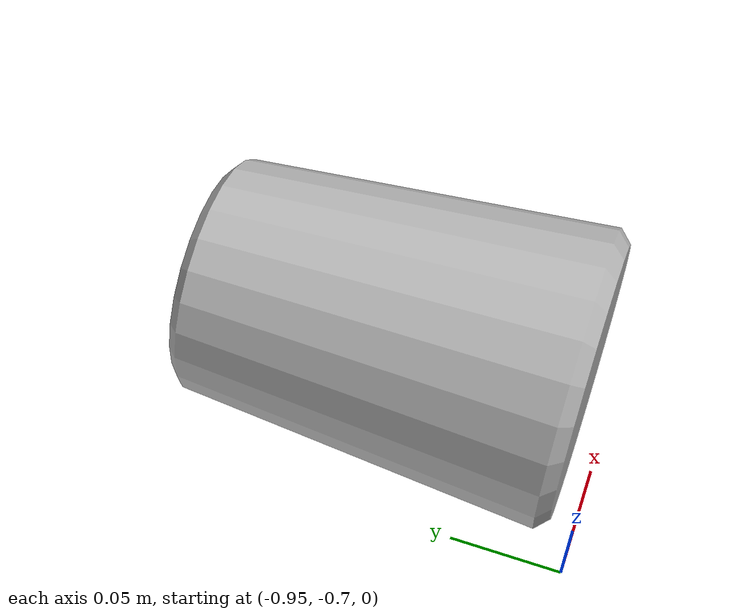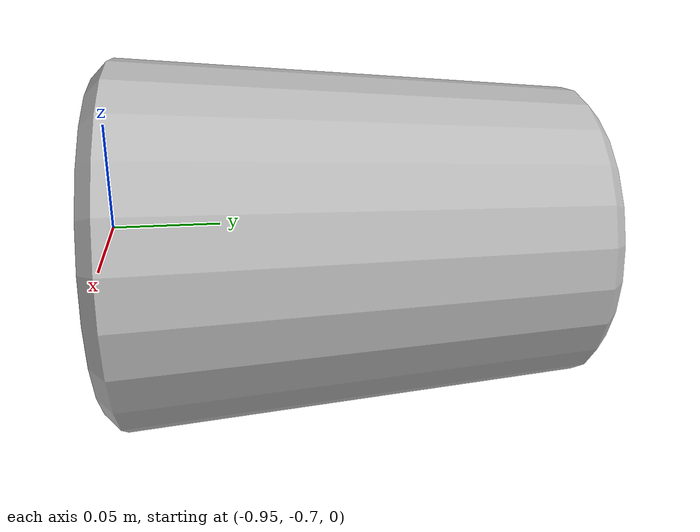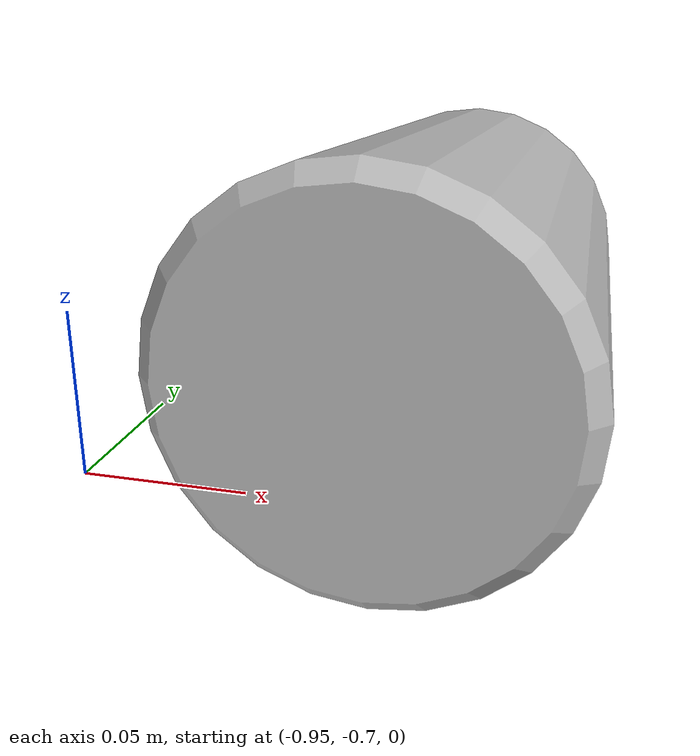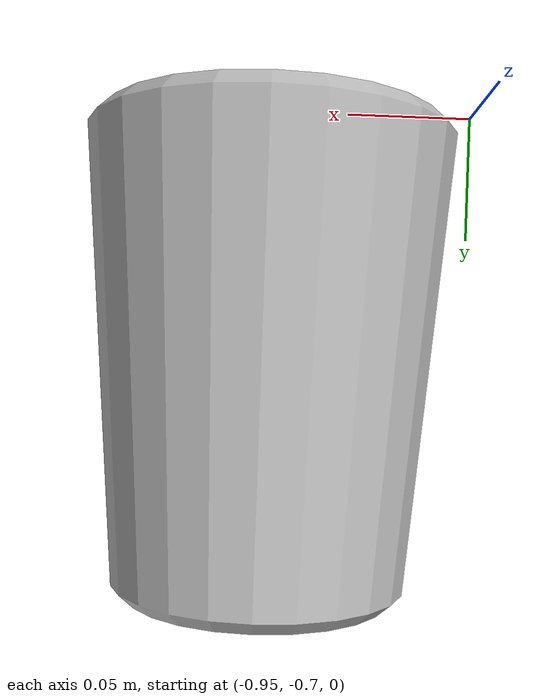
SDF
<?xml version="1.0" ?>
<sdf version="1.4">
  <model name="shelf1_metal1_1">
    <link name="body">
      <pose>0 0 0 0 0 0</pose>
      <inertial>
        <pose>  -0.870000  -0.606783   0.025000 0 0 0</pose>
        <mass>0.5</mass>
        <inertia>
          <ixx>0.01</ixx>
          <ixy>0</ixy>
          <ixz>0</ixz>
          <iyy>0.01</iyy>
          <iyz>0</iyz>
          <izz>0.01</izz>
        </inertia>
      </inertial>
      <collision name="collision">
        <geometry>
          <mesh>
            <uri>model://bookshelf/shelf1_items/metal1_1/metal1_1.dae</uri>
          </mesh>
        </geometry>
      </collision>
      <visual name="visual">
        <geometry>
          <mesh>
            <uri>model://bookshelf/shelf1_items/metal1_1/metal1_1.dae</uri>
          </mesh>
        </geometry>
      </visual>
    </link>
  </model>
</sdf>
